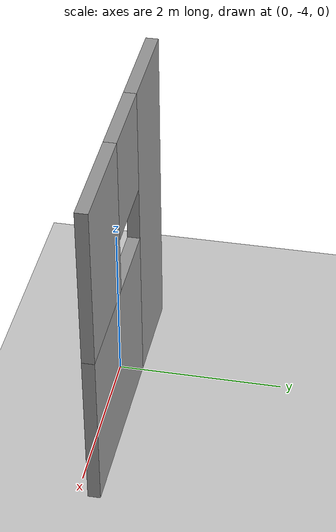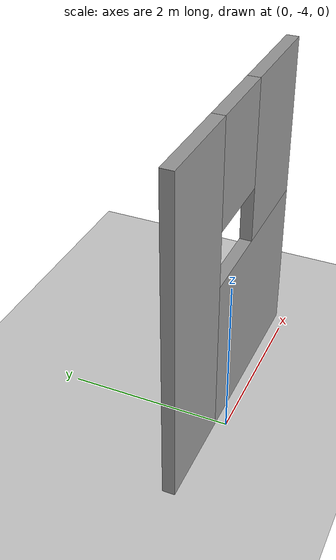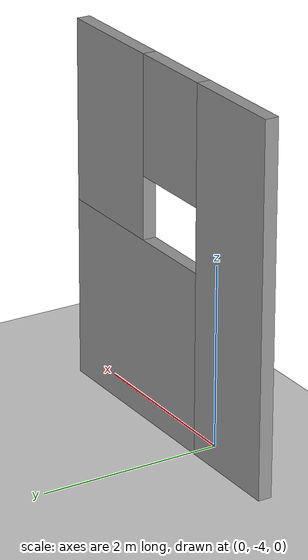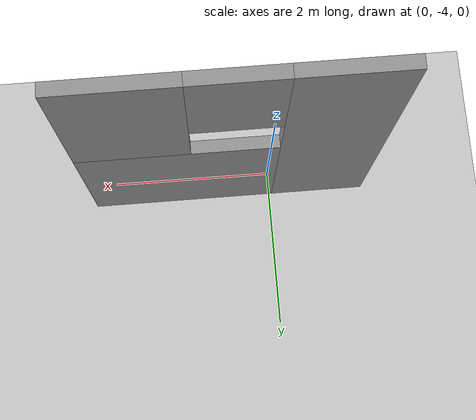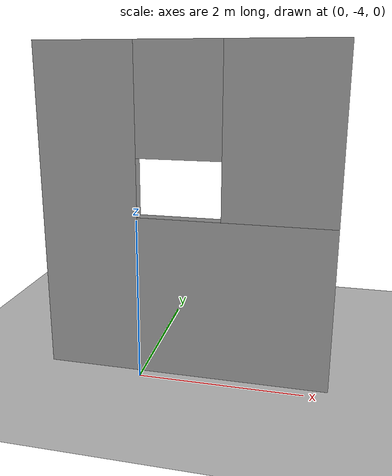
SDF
<sdf version="1.5">
 <world name="default">
  <include><uri>model://sun</uri></include>
  <include><uri>model://ground_plane</uri></include>
  <include><uri>model://asphalt_plane</uri></include>
  <include><uri>model://custom_world</uri></include>
  <physics name="default_physics" default="0" type="ode">
   <gravity>0 0 -9.8066</gravity>
   <ode>
    <solver>
     <type>quick</type>
     <iters>10</iters>
     <sor>1.3</sor>
     <use_dynamic_moi_rescaling>0</use_dynamic_moi_rescaling>
    </solver>
    <constraints>
     <cfm>0</cfm>
     <erp>0.2</erp>
     <contact_max_correcting_vel>100</contact_max_correcting_vel>
     <contact_surface_layer>0.001</contact_surface_layer>
    </constraints>
   </ode>
   <max_step_size>0.004</max_step_size>
   <real_time_factor>1</real_time_factor>
   <real_time_update_rate>250</real_time_update_rate>
   <magnetic_field>6.0e-6 2.3e-5 -4.2e-5</magnetic_field>
  </physics>
 </world>
</sdf>

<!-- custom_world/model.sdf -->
<sdf version='1.6'>
  <model name='custom_world'>
    <pose frame=''>0.525 -1.9375 0 0 -0 0</pose>
    <link name='Wall_0'>
      <pose frame=''>-0 -1.8625 0 0 -0 0</pose>
      <visual name='Wall_0_Visual_0'>
        <pose frame=''>-1.15456 0 2 0 -0 0</pose>
        <geometry>
          <box>
            <size>1.19088 0.15 4</size>
          </box>
        </geometry>
        <material>
          <script>
            <uri>file://media/materials/scripts/gazebo.material</uri>
            <name>Gazebo/Grey</name>
          </script>
          <ambient>1 1 1 1</ambient>
        </material>
        <meta>
          <layer>0</layer>
        </meta>
      </visual>
      <collision name='Wall_0_Collision_0'>
        <geometry>
          <box>
            <size>1.19088 0.15 4</size>
          </box>
        </geometry>
        <pose frame=''>-1.15456 0 2 0 -0 0</pose>
      </collision>
      <visual name='Wall_0_Visual_1'>
        <pose frame=''>0.595441 0 1 0 -0 0</pose>
        <geometry>
          <box>
            <size>2.30912 0.15 2</size>
          </box>
        </geometry>
        <material>
          <script>
            <uri>file://media/materials/scripts/gazebo.material</uri>
            <name>Gazebo/Grey</name>
          </script>
          <ambient>1 1 1 1</ambient>
        </material>
        <meta>
          <layer>0</layer>
        </meta>
      </visual>
      <collision name='Wall_0_Collision_1'>
        <geometry>
          <box>
            <size>2.30912 0.15 2</size>
          </box>
        </geometry>
        <pose frame=''>0.595441 0 1 0 -0 0</pose>
      </collision>
      <visual name='Wall_0_Visual_2'>
        <pose frame=''>1.09544 0 3 0 -0 0</pose>
        <geometry>
          <box>
            <size>1.30912 0.15 2</size>
          </box>
        </geometry>
        <material>
          <script>
            <uri>file://media/materials/scripts/gazebo.material</uri>
            <name>Gazebo/Grey</name>
          </script>
          <ambient>1 1 1 1</ambient>
        </material>
        <meta>
          <layer>0</layer>
        </meta>
      </visual>
      <collision name='Wall_0_Collision_2'>
        <geometry>
          <box>
            <size>1.30912 0.15 2</size>
          </box>
        </geometry>
        <pose frame=''>1.09544 0 3 0 -0 0</pose>
      </collision>
      <visual name='Wall_0_Visual_3'>
        <pose frame=''>-0.059118 0 3.35 0 -0 0</pose>
        <geometry>
          <box>
            <size>1 0.15 1.3</size>
          </box>
        </geometry>
        <material>
          <script>
            <uri>file://media/materials/scripts/gazebo.material</uri>
            <name>Gazebo/Grey</name>
          </script>
          <ambient>1 1 1 1</ambient>
        </material>
        <meta>
          <layer>0</layer>
        </meta>
      </visual>
      <collision name='Wall_0_Collision_3'>
        <geometry>
          <box>
            <size>1 0.15 1.3</size>
          </box>
        </geometry>
        <pose frame=''>-0.059118 0 3.35 0 -0 0</pose>
      </collision>
    </link>
    <static>1</static>
  </model>
</sdf>
